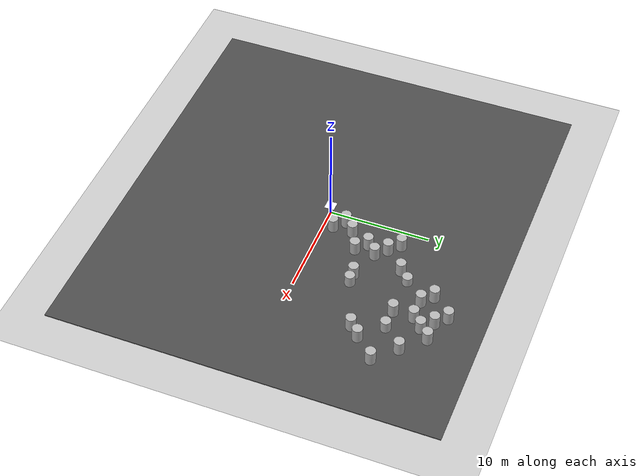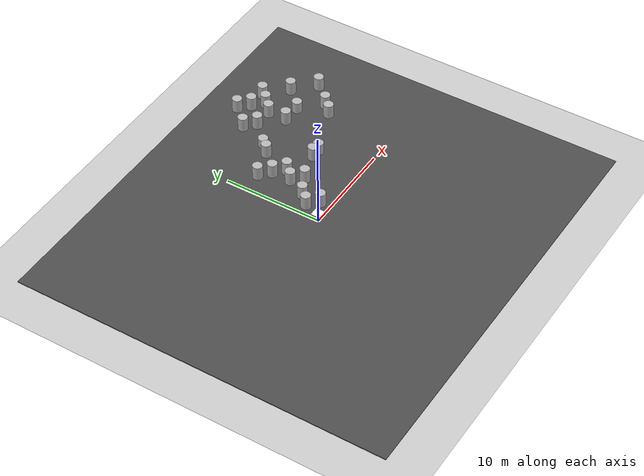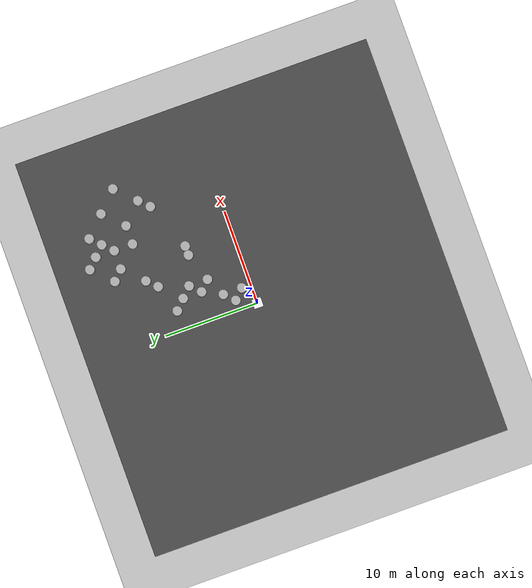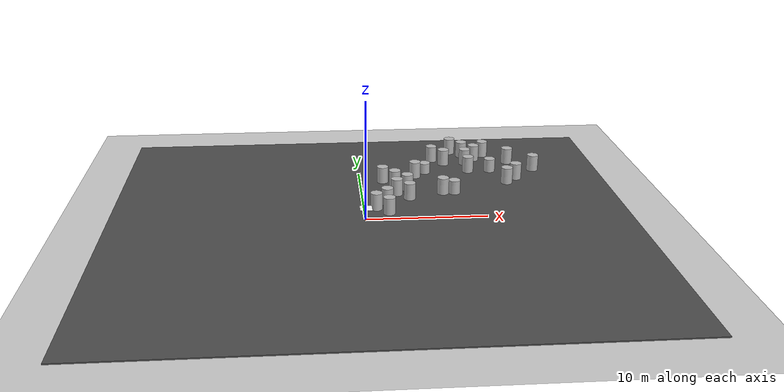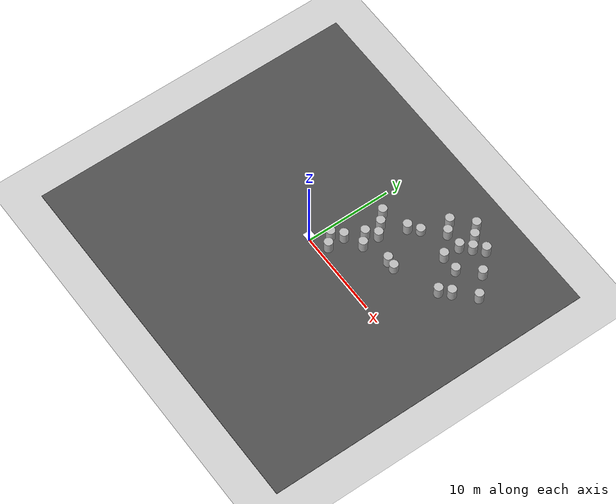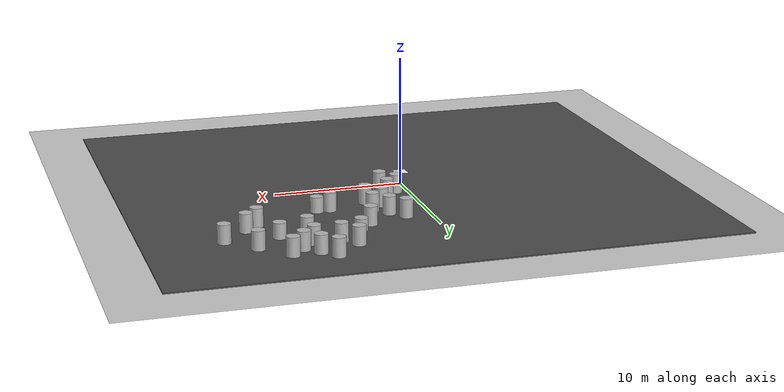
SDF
<sdf version="1.6">
 <world name="default">
  <model name="ground_plane">
   <static>1</static>
   <link name="link">
    <collision name="collision">
     <geometry><plane><normal>0 0 1</normal><size>100 100</size></plane></geometry>
     <surface><friction><ode><mu>100</mu><mu2>50</mu2></ode></friction></surface>
    </collision>
    <visual name="visual">
     <cast_shadows>0</cast_shadows>
     <geometry><plane><normal>0 0 1</normal><size>100 100</size></plane></geometry>
     <material>
      <script><uri>file://media/materials/scripts/gazebo.material</uri><name>Gazebo/Grey</name></script>
     </material>
    </visual>
   </link>
  </model>
  <physics name="default_physics" default="0" type="ode">
   <ode>
    <solver>
     <type>quick</type>
     <iters>10</iters>
     <sor>1.3</sor>
     <use_dynamic_moi_rescaling>0</use_dynamic_moi_rescaling>
    </solver>
    <constraints>
     <cfm>0</cfm>
     <erp>0.2</erp>
     <contact_max_correcting_vel>100</contact_max_correcting_vel>
     <contact_surface_layer>0.001</contact_surface_layer>
    </constraints>
   </ode>
   <max_step_size>0.004</max_step_size>
   <real_time_factor>1</real_time_factor>
   <real_time_update_rate>250</real_time_update_rate>
  </physics>
  <gravity>0 0 -9.8066</gravity>
  <magnetic_field>6e-06 2.3e-05 -4.2e-05</magnetic_field>
  <atmosphere type="adiabatic"/>
  <scene><ambient>0.4 0.4 0.4 1</ambient><background>0.7 0.7 0.7 1</background><shadows>1</shadows></scene>
  <spherical_coordinates>
   <surface_model>EARTH_WGS84</surface_model>
   <latitude_deg>0</latitude_deg>
   <longitude_deg>0</longitude_deg>
   <elevation>0</elevation>
   <heading_deg>0</heading_deg>
  </spherical_coordinates>
  <light name="user_directional_light_0" type="directional">
   <pose>0.540288 -0.667921 1 0 -0 0</pose>
   <diffuse>0.5 0.5 0.5 1</diffuse>
   <specular>0.1 0.1 0.1 1</specular>
   <direction>0.1 0.1 -0.9</direction>
   <attenuation>
    <range>20</range>
    <constant>0.5</constant>
    <linear>0.01</linear>
    <quadratic>0.001</quadratic>
   </attenuation>
  </light>
  <model name="asphalt_plane">
   <static>1</static>
   <link name="link">
    <collision name="collision"><geometry><box><size>42.7782 38.364 0.1</size></box></geometry></collision>
    <visual name="visual">
     <cast_shadows>0</cast_shadows>
     <geometry><box><size>42.7782 38.364 0.1</size></box></geometry>
     <material>
      <script>
       <uri>model://asphalt_plane/materials/scripts</uri>
       <uri>model://asphalt_plane/materials/textures</uri>
       <name>vrc/asphalt</name>
      </script>
     </material>
    </visual>
   </link>
   <pose>0.497562 -0.550879 0 0 -0 0</pose>
  </model>
  <model name="cylinder0">
   <pose>10 12 0 0 0 0</pose>
   <link name="link">
    <collision name="collision">
     <geometry><cylinder><radius>0.5</radius><length>3.0</length></cylinder></geometry>
    </collision>
    <visual name="visual">
     <geometry><cylinder><radius>0.5</radius><length>3.0</length></cylinder></geometry>
     <material><script>Gazebo/WoodPallet</script></material>
    </visual>
   </link>
  </model>
  <model name="cylinder1">
   <pose>1 2 0 0 0 0</pose>
   <link name="link">
    <collision name="collision">
     <geometry><cylinder><radius>0.5</radius><length>3.0</length></cylinder></geometry>
    </collision>
    <visual name="visual">
     <geometry><cylinder><radius>0.5</radius><length>3.0</length></cylinder></geometry>
     <material><script>Gazebo/WoodPallet</script></material>
    </visual>
   </link>
  </model>
  <model name="cylinder2">
   <pose>2 1 0 0 0 0</pose>
   <link name="link">
    <collision name="collision">
     <geometry><cylinder><radius>0.5</radius><length>3.0</length></cylinder></geometry>
    </collision>
    <visual name="visual">
     <geometry><cylinder><radius>0.5</radius><length>3.0</length></cylinder></geometry>
     <material><script>Gazebo/WoodPallet</script></material>
    </visual>
   </link>
  </model>
  <model name="cylinder3">
   <pose>2 3 0 0 0 0</pose>
   <link name="link">
    <collision name="collision">
     <geometry><cylinder><radius>0.5</radius><length>3.0</length></cylinder></geometry>
    </collision>
    <visual name="visual">
     <geometry><cylinder><radius>0.5</radius><length>3.0</length></cylinder></geometry>
     <material><script>Gazebo/WoodPallet</script></material>
    </visual>
   </link>
  </model>
  <model name="cylinder4">
   <pose>4 4 0 0 0 0</pose>
   <link name="link">
    <collision name="collision">
     <geometry><cylinder><radius>0.5</radius><length>3.0</length></cylinder></geometry>
    </collision>
    <visual name="visual">
     <geometry><cylinder><radius>0.5</radius><length>3.0</length></cylinder></geometry>
     <material><script>Gazebo/WoodPallet</script></material>
    </visual>
   </link>
  </model>
  <model name="cylinder5">
   <pose>3 5 0 0 0 0</pose>
   <link name="link">
    <collision name="collision">
     <geometry><cylinder><radius>0.5</radius><length>3.0</length></cylinder></geometry>
    </collision>
    <visual name="visual">
     <geometry><cylinder><radius>0.5</radius><length>3.0</length></cylinder></geometry>
     <material><script>Gazebo/WoodPallet</script></material>
    </visual>
   </link>
  </model>
  <model name="cylinder6">
   <pose>3 7 0 0 0 0</pose>
   <link name="link">
    <collision name="collision">
     <geometry><cylinder><radius>0.5</radius><length>3.0</length></cylinder></geometry>
    </collision>
    <visual name="visual">
     <geometry><cylinder><radius>0.5</radius><length>3.0</length></cylinder></geometry>
     <material><script>Gazebo/WoodPallet</script></material>
    </visual>
   </link>
  </model>
  <model name="cylinder7">
   <pose>4 6 0 0 0 0</pose>
   <link name="link">
    <collision name="collision">
     <geometry><cylinder><radius>0.5</radius><length>3.0</length></cylinder></geometry>
    </collision>
    <visual name="visual">
     <geometry><cylinder><radius>0.5</radius><length>3.0</length></cylinder></geometry>
     <material><script>Gazebo/WoodPallet</script></material>
    </visual>
   </link>
  </model>
  <model name="cylinder8">
   <pose>3 7 0 0 0 0</pose>
   <link name="link">
    <collision name="collision">
     <geometry><cylinder><radius>0.5</radius><length>3.0</length></cylinder></geometry>
    </collision>
    <visual name="visual">
     <geometry><cylinder><radius>0.5</radius><length>3.0</length></cylinder></geometry>
     <material><script>Gazebo/WoodPallet</script></material>
    </visual>
   </link>
  </model>
  <model name="cylinder9">
   <pose>7 5 0 0 0 0</pose>
   <link name="link">
    <collision name="collision">
     <geometry><cylinder><radius>0.5</radius><length>3.0</length></cylinder></geometry>
    </collision>
    <visual name="visual">
     <geometry><cylinder><radius>0.5</radius><length>3.0</length></cylinder></geometry>
     <material><script>Gazebo/WoodPallet</script></material>
    </visual>
   </link>
  </model>
  <model name="cylinder">
   <pose>2 8 0 0 0 0</pose>
   <link name="link">
    <collision name="collision">
     <geometry><cylinder><radius>0.5</radius><length>3.0</length></cylinder></geometry>
    </collision>
    <visual name="visual">
     <geometry><cylinder><radius>0.5</radius><length>3.0</length></cylinder></geometry>
     <material><script>Gazebo/WoodPallet</script></material>
    </visual>
   </link>
  </model>
  <model name="cylinder10">
   <pose>8 5 0 0 0 0</pose>
   <link name="link">
    <collision name="collision">
     <geometry><cylinder><radius>0.5</radius><length>2.5</length></cylinder></geometry>
    </collision>
    <visual name="visual">
     <geometry><cylinder><radius>0.5</radius><length>2.5</length></cylinder></geometry>
     <material><script>Gazebo/WoodPallet</script></material>
    </visual>
   </link>
  </model>
  <model name="cylinder">
   <pose>5 9 0 0 0 0</pose>
   <link name="link">
    <collision name="collision">
     <geometry><cylinder><radius>0.5</radius><length>3.0</length></cylinder></geometry>
    </collision>
    <visual name="visual">
     <geometry><cylinder><radius>0.5</radius><length>3.0</length></cylinder></geometry>
     <material><script>Gazebo/WoodPallet</script></material>
    </visual>
   </link>
  </model>
  <model name="cylinder11">
   <pose>6 10 0 0 0 0</pose>
   <link name="link">
    <collision name="collision">
     <geometry><cylinder><radius>0.5</radius><length>3.0</length></cylinder></geometry>
    </collision>
    <visual name="visual">
     <geometry><cylinder><radius>0.5</radius><length>2.0</length></cylinder></geometry>
     <material><script>Gazebo/WoodPallet</script></material>
    </visual>
   </link>
  </model>
  <model name="cylinder12">
   <pose>10 10 0 0 0 0</pose>
   <link name="link">
    <collision name="collision">
     <geometry><cylinder><radius>0.5</radius><length>2.0</length></cylinder></geometry>
    </collision>
    <visual name="visual">
     <geometry><cylinder><radius>0.5</radius><length>3.0</length></cylinder></geometry>
     <material><script>Gazebo/WoodPallet</script></material>
    </visual>
   </link>
  </model>
  <model name="cylinder13">
   <pose>8 12 0 0 0 0</pose>
   <link name="link">
    <collision name="collision">
     <geometry><cylinder><radius>0.5</radius><length>3.0</length></cylinder></geometry>
    </collision>
    <visual name="visual">
     <geometry><cylinder><radius>0.5</radius><length>3.0</length></cylinder></geometry>
     <material><script>Gazebo/WoodPallet</script></material>
    </visual>
   </link>
  </model>
  <model name="cylinder13">
   <pose>12 14 0 0 0 0</pose>
   <link name="link">
    <collision name="collision">
     <geometry><cylinder><radius>0.5</radius><length>3.0</length></cylinder></geometry>
    </collision>
    <visual name="visual">
     <geometry><cylinder><radius>0.5</radius><length>3.0</length></cylinder></geometry>
     <material><script>Gazebo/WoodPallet</script></material>
    </visual>
   </link>
  </model>
  <model name="cylinder14">
   <pose>9 15 0 0 0 0</pose>
   <link name="link">
    <collision name="collision">
     <geometry><cylinder><radius>0.5</radius><length>3.0</length></cylinder></geometry>
    </collision>
    <visual name="visual">
     <geometry><cylinder><radius>0.5</radius><length>3.0</length></cylinder></geometry>
     <material><script>Gazebo/WoodPallet</script></material>
    </visual>
   </link>
  </model>
  <model name="cylinder15">
   <pose>7 13 0 0 0 0</pose>
   <link name="link">
    <collision name="collision">
     <geometry><cylinder><radius>0.5</radius><length>3.0</length></cylinder></geometry>
    </collision>
    <visual name="visual">
     <geometry><cylinder><radius>0.5</radius><length>3.0</length></cylinder></geometry>
     <material><script>Gazebo/WoodPallet</script></material>
    </visual>
   </link>
  </model>
  <model name="cylinder16">
   <pose>14 8 0 0 0 0</pose>
   <link name="link">
    <collision name="collision">
     <geometry><cylinder><radius>0.5</radius><length>3.0</length></cylinder></geometry>
    </collision>
    <visual name="visual">
     <geometry><cylinder><radius>0.5</radius><length>3.0</length></cylinder></geometry>
     <material><script>Gazebo/WoodPallet</script></material>
    </visual>
   </link>
  </model>
  <model name="cylinder17">
   <pose>13 7 0 0 0 0</pose>
   <link name="link">
    <collision name="collision">
     <geometry><cylinder><radius>0.5</radius><length>3.0</length></cylinder></geometry>
    </collision>
    <visual name="visual">
     <geometry><cylinder><radius>0.5</radius><length>3.0</length></cylinder></geometry>
     <material><script>Gazebo/WoodPallet</script></material>
    </visual>
   </link>
  </model>
  <model name="cylinder18">
   <pose>16 10 0 0 0 0</pose>
   <link name="link">
    <collision name="collision">
     <geometry><cylinder><radius>0.5</radius><length>2.5</length></cylinder></geometry>
    </collision>
    <visual name="visual">
     <geometry><cylinder><radius>0.5</radius><length>3.0</length></cylinder></geometry>
     <material><script>Gazebo/WoodPallet</script></material>
    </visual>
   </link>
  </model>
  <model name="cylinder19">
   <pose>10 14 0 0 0 0</pose>
   <link name="link">
    <collision name="collision">
     <geometry><cylinder><radius>0.5</radius><length>3.0</length></cylinder></geometry>
    </collision>
    <visual name="visual">
     <geometry><cylinder><radius>0.5</radius><length>3.0</length></cylinder></geometry>
     <material><script>Gazebo/WoodPallet</script></material>
    </visual>
   </link>
  </model>
  <model name="cylinder20">
   <pose>11 13 0 0 0 0</pose>
   <link name="link">
    <collision name="collision">
     <geometry><cylinder><radius>0.5</radius><length>3.0</length></cylinder></geometry>
    </collision>
    <visual name="visual">
     <geometry><cylinder><radius>0.5</radius><length>3.0</length></cylinder></geometry>
     <material><script>Gazebo/WoodPallet</script></material>
    </visual>
   </link>
  </model>
  <model name="cylinder21">
   <pose>12 10 0 0 0 0</pose>
   <link name="link">
    <collision name="collision">
     <geometry><cylinder><radius>0.5</radius><length>2.5</length></cylinder></geometry>
    </collision>
    <visual name="visual">
     <geometry><cylinder><radius>0.5</radius><length>2.5</length></cylinder></geometry>
     <material><script>Gazebo/WoodPallet</script></material>
    </visual>
   </link>
  </model>
  <model name="cylinder22">
   <pose>14 12 0 0 0 0</pose>
   <link name="link">
    <collision name="collision">
     <geometry><cylinder><radius>0.5</radius><length>2.0</length></cylinder></geometry>
    </collision>
    <visual name="visual">
     <geometry><cylinder><radius>0.5</radius><length>3.0</length></cylinder></geometry>
     <material><script>Gazebo/WoodPallet</script></material>
    </visual>
   </link>
  </model>
  <model name="aruco_visual_marker_0">
   <pose>0 0 1 0 -0 0</pose>
   <link name="marker">
    <pose>0 0 0 0 -0 3.14</pose>
    <visual name="visual">
     <geometry><box><size>1 1 1e-05</size></box></geometry>
     <material>
      <script>
       <uri>model://fractal_marker/materials/scripts</uri>
       <uri>model://fractal_marker/materials/textures</uri>
       <name>ArucoVisualMarker0</name>
      </script>
      <ambient>1 1 1 1</ambient>
      <diffuse>1 1 1 1</diffuse>
      <specular>0 0 0 1</specular>
      <emissive>1 1 1 0</emissive>
      <shader type="vertex"><normal_map>__default__</normal_map></shader>
     </material>
    </visual>
    <collision name="collision"><geometry><box><size>1 1 1e-05</size></box></geometry></collision>
   </link>
   <static>1</static>
  </model>
  <light name="user_directional_light_1" type="directional">
   <pose>18.7483 28.6467 1 0 -0 0</pose>
   <diffuse>0.5 0.5 0.5 1</diffuse>
   <specular>0.1 0.1 0.1 1</specular>
   <direction>0.1 0.1 -0.9</direction>
   <attenuation>
    <range>20</range>
    <constant>0.5</constant>
    <linear>0.01</linear>
    <quadratic>0.001</quadratic>
   </attenuation>
  </light>
 </world>
</sdf>
